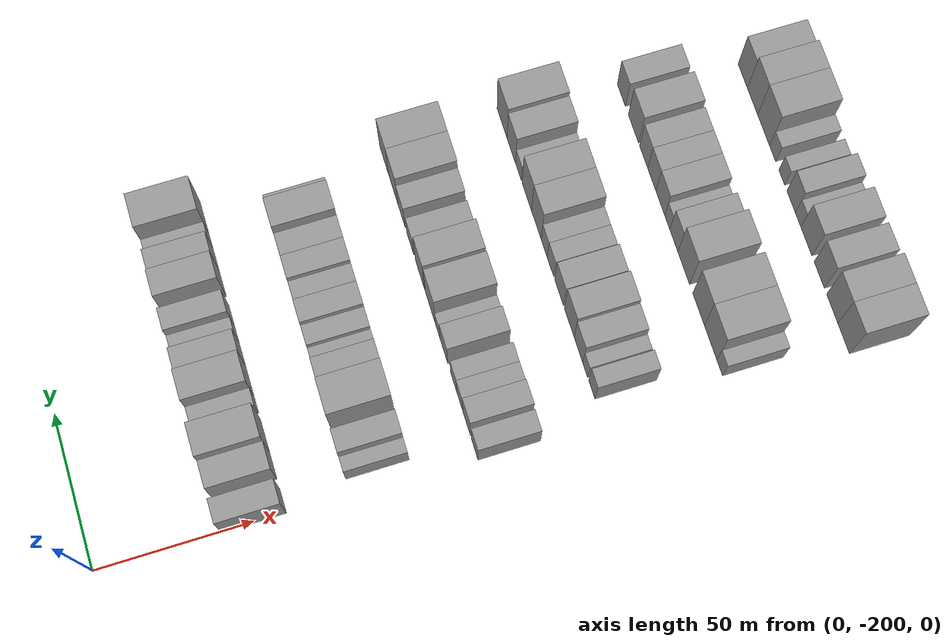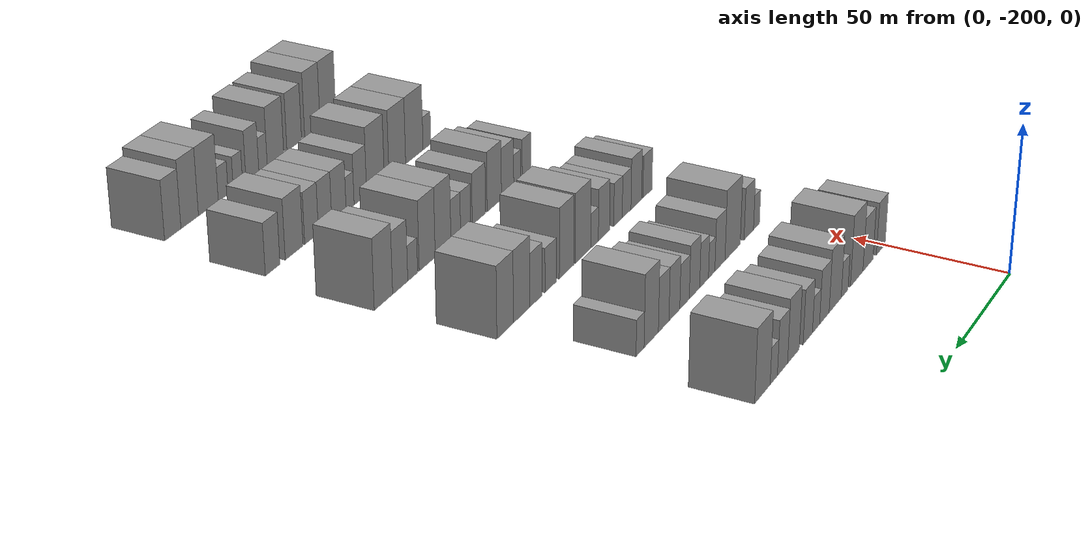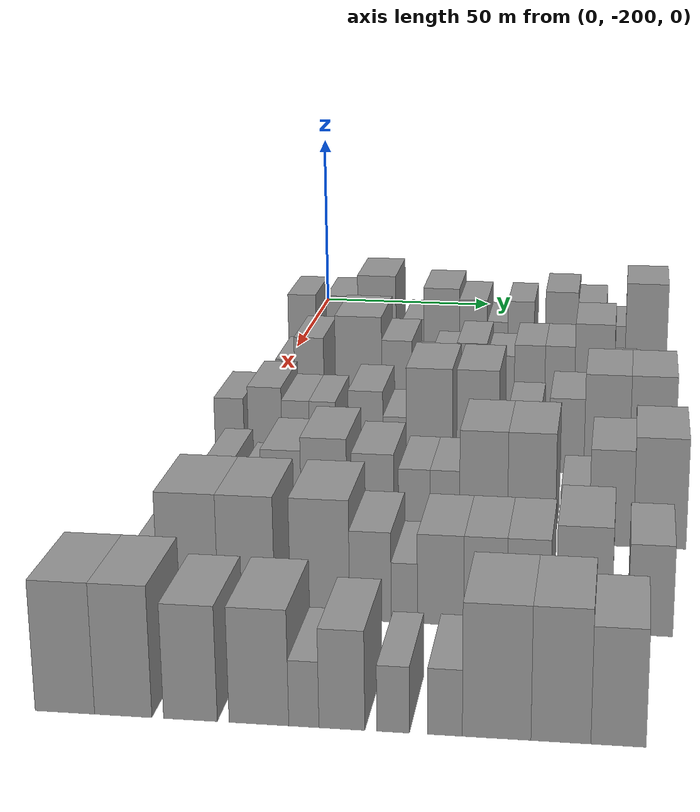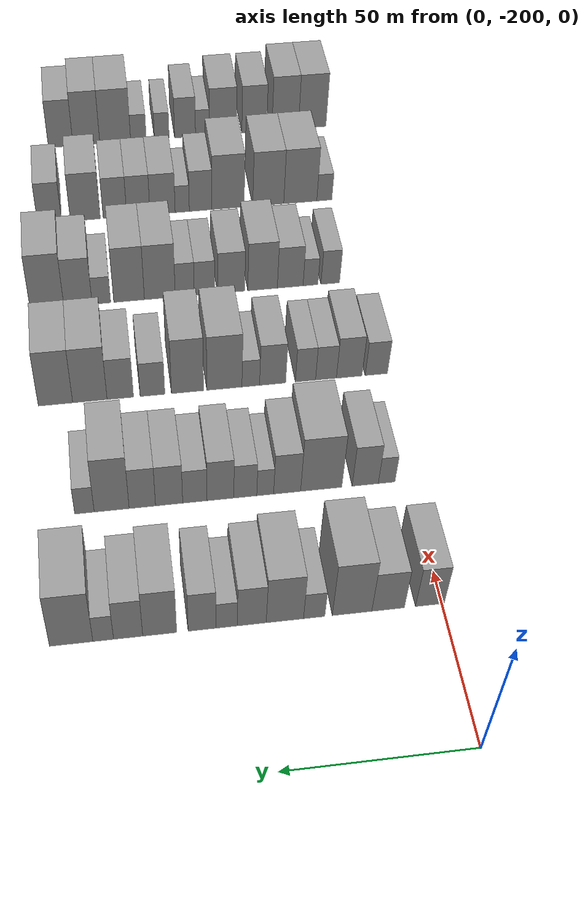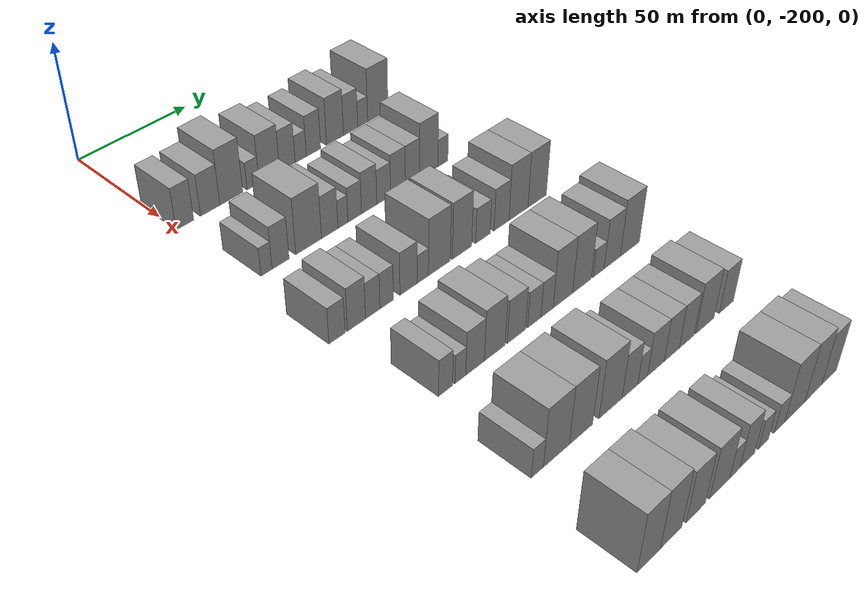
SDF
<sdf version="1.6">
 <world name="default">
  <model name="building_50">
   <static>1</static>
   <pose>50.0000 -196.6402 0 0.000000 0.000000 0.000000</pose>
   <link name="link">
    <pose>0 0 9.00 0 0 0</pose>
    <collision name="collision"><geometry><box><size>20.0000 7.7727 18.0000</size></box></geometry></collision>
    <visual name="visual">
     <cast_shadows>0</cast_shadows>
     <geometry><box><size>20.0000 7.7727 18.0000</size></box></geometry>
     <material>
      <script>
       <uri>model://grey_wall/materials/scripts</uri>
       <uri>model://grey_wall/materials/textures</uri>
       <name>vrc/grey_wall</name>
      </script>
     </material>
    </visual>
   </link>
  </model>
  <model name="building_51">
   <static>1</static>
   <pose>50.0000 -185.3771 0 0.000000 0.000000 0.000000</pose>
   <link name="link">
    <pose>0 0 9.00 0 0 0</pose>
    <collision name="collision"><geometry><box><size>20.0000 8.7536 18.0000</size></box></geometry></collision>
    <visual name="visual">
     <cast_shadows>0</cast_shadows>
     <geometry><box><size>20.0000 8.7536 18.0000</size></box></geometry>
     <material>
      <script>
       <uri>model://grey_wall/materials/scripts</uri>
       <uri>model://grey_wall/materials/textures</uri>
       <name>vrc/grey_wall</name>
      </script>
     </material>
    </visual>
   </link>
  </model>
  <model name="building_52">
   <static>1</static>
   <pose>50.0000 -175.7151 0 0.000000 0.000000 0.000000</pose>
   <link name="link">
    <pose>0 0 12.00 0 0 0</pose>
    <collision name="collision"><geometry><box><size>20.0000 10.5704 24.0000</size></box></geometry></collision>
    <visual name="visual">
     <cast_shadows>0</cast_shadows>
     <geometry><box><size>20.0000 10.5704 24.0000</size></box></geometry>
     <material>
      <script>
       <uri>model://grey_wall/materials/scripts</uri>
       <uri>model://grey_wall/materials/textures</uri>
       <name>vrc/grey_wall</name>
      </script>
     </material>
    </visual>
   </link>
  </model>
  <model name="building_53">
   <static>1</static>
   <pose>50.0000 -165.5970 0 0.000000 0.000000 0.000000</pose>
   <link name="link">
    <pose>0 0 6.00 0 0 0</pose>
    <collision name="collision"><geometry><box><size>20.0000 5.6657 12.0000</size></box></geometry></collision>
    <visual name="visual">
     <cast_shadows>0</cast_shadows>
     <geometry><box><size>20.0000 5.6657 12.0000</size></box></geometry>
     <material>
      <script>
       <uri>model://grey_wall/materials/scripts</uri>
       <uri>model://grey_wall/materials/textures</uri>
       <name>vrc/grey_wall</name>
      </script>
     </material>
    </visual>
   </link>
  </model>
  <model name="building_54">
   <static>1</static>
   <pose>50.0000 -157.8169 0 0.000000 0.000000 0.000000</pose>
   <link name="link">
    <pose>0 0 10.50 0 0 0</pose>
    <collision name="collision"><geometry><box><size>20.0000 9.8945 21.0000</size></box></geometry></collision>
    <visual name="visual">
     <cast_shadows>0</cast_shadows>
     <geometry><box><size>20.0000 9.8945 21.0000</size></box></geometry>
     <material>
      <script>
       <uri>model://grey_wall/materials/scripts</uri>
       <uri>model://grey_wall/materials/textures</uri>
       <name>vrc/grey_wall</name>
      </script>
     </material>
    </visual>
   </link>
  </model>
  <model name="building_55">
   <static>1</static>
   <pose>50.0000 -149.0319 0 0.000000 0.000000 0.000000</pose>
   <link name="link">
    <pose>0 0 9.00 0 0 0</pose>
    <collision name="collision"><geometry><box><size>20.0000 7.6756 18.0000</size></box></geometry></collision>
    <visual name="visual">
     <cast_shadows>0</cast_shadows>
     <geometry><box><size>20.0000 7.6756 18.0000</size></box></geometry>
     <material>
      <script>
       <uri>model://grey_wall/materials/scripts</uri>
       <uri>model://grey_wall/materials/textures</uri>
       <name>vrc/grey_wall</name>
      </script>
     </material>
    </visual>
   </link>
  </model>
  <model name="building_56">
   <static>1</static>
   <pose>50.0000 -142.3919 0 0.000000 0.000000 0.000000</pose>
   <link name="link">
    <pose>0 0 6.00 0 0 0</pose>
    <collision name="collision"><geometry><box><size>20.0000 5.6045 12.0000</size></box></geometry></collision>
    <visual name="visual">
     <cast_shadows>0</cast_shadows>
     <geometry><box><size>20.0000 5.6045 12.0000</size></box></geometry>
     <material>
      <script>
       <uri>model://grey_wall/materials/scripts</uri>
       <uri>model://grey_wall/materials/textures</uri>
       <name>vrc/grey_wall</name>
      </script>
     </material>
    </visual>
   </link>
  </model>
  <model name="building_57">
   <static>1</static>
   <pose>50.0000 -135.9577 0 0.000000 0.000000 0.000000</pose>
   <link name="link">
    <pose>0 0 9.00 0 0 0</pose>
    <collision name="collision"><geometry><box><size>20.0000 7.2639 18.0000</size></box></geometry></collision>
    <visual name="visual">
     <cast_shadows>0</cast_shadows>
     <geometry><box><size>20.0000 7.2639 18.0000</size></box></geometry>
     <material>
      <script>
       <uri>model://grey_wall/materials/scripts</uri>
       <uri>model://grey_wall/materials/textures</uri>
       <name>vrc/grey_wall</name>
      </script>
     </material>
    </visual>
   </link>
  </model>
  <model name="building_58">
   <static>1</static>
   <pose>50.0000 -124.8921 0 0.000000 0.000000 0.000000</pose>
   <link name="link">
    <pose>0 0 10.50 0 0 0</pose>
    <collision name="collision"><geometry><box><size>20.0000 8.8673 21.0000</size></box></geometry></collision>
    <visual name="visual">
     <cast_shadows>0</cast_shadows>
     <geometry><box><size>20.0000 8.8673 21.0000</size></box></geometry>
     <material>
      <script>
       <uri>model://grey_wall/materials/scripts</uri>
       <uri>model://grey_wall/materials/textures</uri>
       <name>vrc/grey_wall</name>
      </script>
     </material>
    </visual>
   </link>
  </model>
  <model name="building_59">
   <static>1</static>
   <pose>50.0000 -116.6675 0 0.000000 0.000000 0.000000</pose>
   <link name="link">
    <pose>0 0 9.00 0 0 0</pose>
    <collision name="collision"><geometry><box><size>20.0000 7.5818 18.0000</size></box></geometry></collision>
    <visual name="visual">
     <cast_shadows>0</cast_shadows>
     <geometry><box><size>20.0000 7.5818 18.0000</size></box></geometry>
     <material>
      <script>
       <uri>model://grey_wall/materials/scripts</uri>
       <uri>model://grey_wall/materials/textures</uri>
       <name>vrc/grey_wall</name>
      </script>
     </material>
    </visual>
   </link>
  </model>
  <model name="building_60">
   <static>1</static>
   <pose>50.0000 -110.1980 0 0.000000 0.000000 0.000000</pose>
   <link name="link">
    <pose>0 0 6.00 0 0 0</pose>
    <collision name="collision"><geometry><box><size>20.0000 5.3574 12.0000</size></box></geometry></collision>
    <visual name="visual">
     <cast_shadows>0</cast_shadows>
     <geometry><box><size>20.0000 5.3574 12.0000</size></box></geometry>
     <material>
      <script>
       <uri>model://grey_wall/materials/scripts</uri>
       <uri>model://grey_wall/materials/textures</uri>
       <name>vrc/grey_wall</name>
      </script>
     </material>
    </visual>
   </link>
  </model>
  <model name="building_61">
   <static>1</static>
   <pose>50.0000 -101.9220 0 0.000000 0.000000 0.000000</pose>
   <link name="link">
    <pose>0 0 12.00 0 0 0</pose>
    <collision name="collision"><geometry><box><size>20.0000 11.1946 24.0000</size></box></geometry></collision>
    <visual name="visual">
     <cast_shadows>0</cast_shadows>
     <geometry><box><size>20.0000 11.1946 24.0000</size></box></geometry>
     <material>
      <script>
       <uri>model://grey_wall/materials/scripts</uri>
       <uri>model://grey_wall/materials/textures</uri>
       <name>vrc/grey_wall</name>
      </script>
     </material>
    </visual>
   </link>
  </model>
  <model name="building_187">
   <static>1</static>
   <pose>90.0000 -193.4562 0 0.000000 0.000000 0.000000</pose>
   <link name="link">
    <pose>0 0 6.00 0 0 0</pose>
    <collision name="collision"><geometry><box><size>20.0000 4.8399 12.0000</size></box></geometry></collision>
    <visual name="visual">
     <cast_shadows>0</cast_shadows>
     <geometry><box><size>20.0000 4.8399 12.0000</size></box></geometry>
     <material>
      <script>
       <uri>model://grey_wall/materials/scripts</uri>
       <uri>model://grey_wall/materials/textures</uri>
       <name>vrc/grey_wall</name>
      </script>
     </material>
    </visual>
   </link>
  </model>
  <model name="building_188">
   <static>1</static>
   <pose>90.0000 -187.2485 0 0.000000 0.000000 0.000000</pose>
   <link name="link">
    <pose>0 0 9.00 0 0 0</pose>
    <collision name="collision"><geometry><box><size>20.0000 7.5754 18.0000</size></box></geometry></collision>
    <visual name="visual">
     <cast_shadows>0</cast_shadows>
     <geometry><box><size>20.0000 7.5754 18.0000</size></box></geometry>
     <material>
      <script>
       <uri>model://grey_wall/materials/scripts</uri>
       <uri>model://grey_wall/materials/textures</uri>
       <name>vrc/grey_wall</name>
      </script>
     </material>
    </visual>
   </link>
  </model>
  <model name="building_189">
   <static>1</static>
   <pose>90.0000 -174.5279 0 0.000000 0.000000 0.000000</pose>
   <link name="link">
    <pose>0 0 12.00 0 0 0</pose>
    <collision name="collision"><geometry><box><size>20.0000 11.8659 24.0000</size></box></geometry></collision>
    <visual name="visual">
     <cast_shadows>0</cast_shadows>
     <geometry><box><size>20.0000 11.8659 24.0000</size></box></geometry>
     <material>
      <script>
       <uri>model://grey_wall/materials/scripts</uri>
       <uri>model://grey_wall/materials/textures</uri>
       <name>vrc/grey_wall</name>
      </script>
     </material>
    </visual>
   </link>
  </model>
  <model name="building_190">
   <static>1</static>
   <pose>90.0000 -164.7152 0 0.000000 0.000000 0.000000</pose>
   <link name="link">
    <pose>0 0 9.00 0 0 0</pose>
    <collision name="collision"><geometry><box><size>20.0000 7.7595 18.0000</size></box></geometry></collision>
    <visual name="visual">
     <cast_shadows>0</cast_shadows>
     <geometry><box><size>20.0000 7.7595 18.0000</size></box></geometry>
     <material>
      <script>
       <uri>model://grey_wall/materials/scripts</uri>
       <uri>model://grey_wall/materials/textures</uri>
       <name>vrc/grey_wall</name>
      </script>
     </material>
    </visual>
   </link>
  </model>
  <model name="building_191">
   <static>1</static>
   <pose>90.0000 -158.4291 0 0.000000 0.000000 0.000000</pose>
   <link name="link">
    <pose>0 0 6.00 0 0 0</pose>
    <collision name="collision"><geometry><box><size>20.0000 4.8127 12.0000</size></box></geometry></collision>
    <visual name="visual">
     <cast_shadows>0</cast_shadows>
     <geometry><box><size>20.0000 4.8127 12.0000</size></box></geometry>
     <material>
      <script>
       <uri>model://grey_wall/materials/scripts</uri>
       <uri>model://grey_wall/materials/textures</uri>
       <name>vrc/grey_wall</name>
      </script>
     </material>
    </visual>
   </link>
  </model>
  <model name="building_192">
   <static>1</static>
   <pose>90.0000 -152.7436 0 0.000000 0.000000 0.000000</pose>
   <link name="link">
    <pose>0 0 7.50 0 0 0</pose>
    <collision name="collision"><geometry><box><size>20.0000 6.5583 15.0000</size></box></geometry></collision>
    <visual name="visual">
     <cast_shadows>0</cast_shadows>
     <geometry><box><size>20.0000 6.5583 15.0000</size></box></geometry>
     <material>
      <script>
       <uri>model://grey_wall/materials/scripts</uri>
       <uri>model://grey_wall/materials/textures</uri>
       <name>vrc/grey_wall</name>
      </script>
     </material>
    </visual>
   </link>
  </model>
  <model name="building_193">
   <static>1</static>
   <pose>90.0000 -145.6648 0 0.000000 0.000000 0.000000</pose>
   <link name="link">
    <pose>0 0 9.00 0 0 0</pose>
    <collision name="collision"><geometry><box><size>20.0000 7.5993 18.0000</size></box></geometry></collision>
    <visual name="visual">
     <cast_shadows>0</cast_shadows>
     <geometry><box><size>20.0000 7.5993 18.0000</size></box></geometry>
     <material>
      <script>
       <uri>model://grey_wall/materials/scripts</uri>
       <uri>model://grey_wall/materials/textures</uri>
       <name>vrc/grey_wall</name>
      </script>
     </material>
    </visual>
   </link>
  </model>
  <model name="building_194">
   <static>1</static>
   <pose>90.0000 -138.4148 0 0.000000 0.000000 0.000000</pose>
   <link name="link">
    <pose>0 0 7.50 0 0 0</pose>
    <collision name="collision"><geometry><box><size>20.0000 6.9006 15.0000</size></box></geometry></collision>
    <visual name="visual">
     <cast_shadows>0</cast_shadows>
     <geometry><box><size>20.0000 6.9006 15.0000</size></box></geometry>
     <material>
      <script>
       <uri>model://grey_wall/materials/scripts</uri>
       <uri>model://grey_wall/materials/textures</uri>
       <name>vrc/grey_wall</name>
      </script>
     </material>
    </visual>
   </link>
  </model>
  <model name="building_195">
   <static>1</static>
   <pose>90.0000 -131.1266 0 0.000000 0.000000 0.000000</pose>
   <link name="link">
    <pose>0 0 9.00 0 0 0</pose>
    <collision name="collision"><geometry><box><size>20.0000 7.6757 18.0000</size></box></geometry></collision>
    <visual name="visual">
     <cast_shadows>0</cast_shadows>
     <geometry><box><size>20.0000 7.6757 18.0000</size></box></geometry>
     <material>
      <script>
       <uri>model://grey_wall/materials/scripts</uri>
       <uri>model://grey_wall/materials/textures</uri>
       <name>vrc/grey_wall</name>
      </script>
     </material>
    </visual>
   </link>
  </model>
  <model name="building_196">
   <static>1</static>
   <pose>90.0000 -123.5743 0 0.000000 0.000000 0.000000</pose>
   <link name="link">
    <pose>0 0 9.00 0 0 0</pose>
    <collision name="collision"><geometry><box><size>20.0000 7.4290 18.0000</size></box></geometry></collision>
    <visual name="visual">
     <cast_shadows>0</cast_shadows>
     <geometry><box><size>20.0000 7.4290 18.0000</size></box></geometry>
     <material>
      <script>
       <uri>model://grey_wall/materials/scripts</uri>
       <uri>model://grey_wall/materials/textures</uri>
       <name>vrc/grey_wall</name>
      </script>
     </material>
    </visual>
   </link>
  </model>
  <model name="building_197">
   <static>1</static>
   <pose>90.0000 -114.9617 0 0.000000 0.000000 0.000000</pose>
   <link name="link">
    <pose>0 0 12.00 0 0 0</pose>
    <collision name="collision"><geometry><box><size>20.0000 9.7962 24.0000</size></box></geometry></collision>
    <visual name="visual">
     <cast_shadows>0</cast_shadows>
     <geometry><box><size>20.0000 9.7962 24.0000</size></box></geometry>
     <material>
      <script>
       <uri>model://grey_wall/materials/scripts</uri>
       <uri>model://grey_wall/materials/textures</uri>
       <name>vrc/grey_wall</name>
      </script>
     </material>
    </visual>
   </link>
  </model>
  <model name="building_198">
   <static>1</static>
   <pose>90.0000 -107.3405 0 0.000000 0.000000 0.000000</pose>
   <link name="link">
    <pose>0 0 6.00 0 0 0</pose>
    <collision name="collision"><geometry><box><size>20.0000 5.4462 12.0000</size></box></geometry></collision>
    <visual name="visual">
     <cast_shadows>0</cast_shadows>
     <geometry><box><size>20.0000 5.4462 12.0000</size></box></geometry>
     <material>
      <script>
       <uri>model://grey_wall/materials/scripts</uri>
       <uri>model://grey_wall/materials/textures</uri>
       <name>vrc/grey_wall</name>
      </script>
     </material>
    </visual>
   </link>
  </model>
  <model name="building_326">
   <static>1</static>
   <pose>130.0000 -198.7115 0 0.000000 0.000000 0.000000</pose>
   <link name="link">
    <pose>0 0 7.50 0 0 0</pose>
    <collision name="collision"><geometry><box><size>20.0000 6.9392 15.0000</size></box></geometry></collision>
    <visual name="visual">
     <cast_shadows>0</cast_shadows>
     <geometry><box><size>20.0000 6.9392 15.0000</size></box></geometry>
     <material>
      <script>
       <uri>model://grey_wall/materials/scripts</uri>
       <uri>model://grey_wall/materials/textures</uri>
       <name>vrc/grey_wall</name>
      </script>
     </material>
    </visual>
   </link>
  </model>
  <model name="building_327">
   <static>1</static>
   <pose>130.0000 -190.2545 0 0.000000 0.000000 0.000000</pose>
   <link name="link">
    <pose>0 0 9.00 0 0 0</pose>
    <collision name="collision"><geometry><box><size>20.0000 7.9747 18.0000</size></box></geometry></collision>
    <visual name="visual">
     <cast_shadows>0</cast_shadows>
     <geometry><box><size>20.0000 7.9747 18.0000</size></box></geometry>
     <material>
      <script>
       <uri>model://grey_wall/materials/scripts</uri>
       <uri>model://grey_wall/materials/textures</uri>
       <name>vrc/grey_wall</name>
      </script>
     </material>
    </visual>
   </link>
  </model>
  <model name="building_328">
   <static>1</static>
   <pose>130.0000 -183.0365 0 0.000000 0.000000 0.000000</pose>
   <link name="link">
    <pose>0 0 7.50 0 0 0</pose>
    <collision name="collision"><geometry><box><size>20.0000 6.4613 15.0000</size></box></geometry></collision>
    <visual name="visual">
     <cast_shadows>0</cast_shadows>
     <geometry><box><size>20.0000 6.4613 15.0000</size></box></geometry>
     <material>
      <script>
       <uri>model://grey_wall/materials/scripts</uri>
       <uri>model://grey_wall/materials/textures</uri>
       <name>vrc/grey_wall</name>
      </script>
     </material>
    </visual>
   </link>
  </model>
  <model name="building_329">
   <static>1</static>
   <pose>130.0000 -176.6964 0 0.000000 0.000000 0.000000</pose>
   <link name="link">
    <pose>0 0 7.50 0 0 0</pose>
    <collision name="collision"><geometry><box><size>20.0000 6.2189 15.0000</size></box></geometry></collision>
    <visual name="visual">
     <cast_shadows>0</cast_shadows>
     <geometry><box><size>20.0000 6.2189 15.0000</size></box></geometry>
     <material>
      <script>
       <uri>model://grey_wall/materials/scripts</uri>
       <uri>model://grey_wall/materials/textures</uri>
       <name>vrc/grey_wall</name>
      </script>
     </material>
    </visual>
   </link>
  </model>
  <model name="building_330">
   <static>1</static>
   <pose>130.0000 -166.5585 0 0.000000 0.000000 0.000000</pose>
   <link name="link">
    <pose>0 0 9.00 0 0 0</pose>
    <collision name="collision"><geometry><box><size>20.0000 8.0570 18.0000</size></box></geometry></collision>
    <visual name="visual">
     <cast_shadows>0</cast_shadows>
     <geometry><box><size>20.0000 8.0570 18.0000</size></box></geometry>
     <material>
      <script>
       <uri>model://grey_wall/materials/scripts</uri>
       <uri>model://grey_wall/materials/textures</uri>
       <name>vrc/grey_wall</name>
      </script>
     </material>
    </visual>
   </link>
  </model>
  <model name="building_331">
   <static>1</static>
   <pose>130.0000 -159.8235 0 0.000000 0.000000 0.000000</pose>
   <link name="link">
    <pose>0 0 6.00 0 0 0</pose>
    <collision name="collision"><geometry><box><size>20.0000 5.4130 12.0000</size></box></geometry></collision>
    <visual name="visual">
     <cast_shadows>0</cast_shadows>
     <geometry><box><size>20.0000 5.4130 12.0000</size></box></geometry>
     <material>
      <script>
       <uri>model://grey_wall/materials/scripts</uri>
       <uri>model://grey_wall/materials/textures</uri>
       <name>vrc/grey_wall</name>
      </script>
     </material>
    </visual>
   </link>
  </model>
  <model name="building_332">
   <static>1</static>
   <pose>130.0000 -151.7555 0 0.000000 0.000000 0.000000</pose>
   <link name="link">
    <pose>0 0 12.00 0 0 0</pose>
    <collision name="collision"><geometry><box><size>20.0000 10.7230 24.0000</size></box></geometry></collision>
    <visual name="visual">
     <cast_shadows>0</cast_shadows>
     <geometry><box><size>20.0000 10.7230 24.0000</size></box></geometry>
     <material>
      <script>
       <uri>model://grey_wall/materials/scripts</uri>
       <uri>model://grey_wall/materials/textures</uri>
       <name>vrc/grey_wall</name>
      </script>
     </material>
    </visual>
   </link>
  </model>
  <model name="building_333">
   <static>1</static>
   <pose>130.0000 -140.5081 0 0.000000 0.000000 0.000000</pose>
   <link name="link">
    <pose>0 0 12.00 0 0 0</pose>
    <collision name="collision"><geometry><box><size>20.0000 9.7718 24.0000</size></box></geometry></collision>
    <visual name="visual">
     <cast_shadows>0</cast_shadows>
     <geometry><box><size>20.0000 9.7718 24.0000</size></box></geometry>
     <material>
      <script>
       <uri>model://grey_wall/materials/scripts</uri>
       <uri>model://grey_wall/materials/textures</uri>
       <name>vrc/grey_wall</name>
      </script>
     </material>
    </visual>
   </link>
  </model>
  <model name="building_334">
   <static>1</static>
   <pose>130.0000 -129.8752 0 0.000000 0.000000 0.000000</pose>
   <link name="link">
    <pose>0 0 7.50 0 0 0</pose>
    <collision name="collision"><geometry><box><size>20.0000 7.4941 15.0000</size></box></geometry></collision>
    <visual name="visual">
     <cast_shadows>0</cast_shadows>
     <geometry><box><size>20.0000 7.4941 15.0000</size></box></geometry>
     <material>
      <script>
       <uri>model://grey_wall/materials/scripts</uri>
       <uri>model://grey_wall/materials/textures</uri>
       <name>vrc/grey_wall</name>
      </script>
     </material>
    </visual>
   </link>
  </model>
  <model name="building_335">
   <static>1</static>
   <pose>130.0000 -120.1341 0 0.000000 0.000000 0.000000</pose>
   <link name="link">
    <pose>0 0 9.00 0 0 0</pose>
    <collision name="collision"><geometry><box><size>20.0000 7.9881 18.0000</size></box></geometry></collision>
    <visual name="visual">
     <cast_shadows>0</cast_shadows>
     <geometry><box><size>20.0000 7.9881 18.0000</size></box></geometry>
     <material>
      <script>
       <uri>model://grey_wall/materials/scripts</uri>
       <uri>model://grey_wall/materials/textures</uri>
       <name>vrc/grey_wall</name>
      </script>
     </material>
    </visual>
   </link>
  </model>
  <model name="building_336">
   <static>1</static>
   <pose>130.0000 -110.9661 0 0.000000 0.000000 0.000000</pose>
   <link name="link">
    <pose>0 0 12.00 0 0 0</pose>
    <collision name="collision"><geometry><box><size>20.0000 10.3480 24.0000</size></box></geometry></collision>
    <visual name="visual">
     <cast_shadows>0</cast_shadows>
     <geometry><box><size>20.0000 10.3480 24.0000</size></box></geometry>
     <material>
      <script>
       <uri>model://grey_wall/materials/scripts</uri>
       <uri>model://grey_wall/materials/textures</uri>
       <name>vrc/grey_wall</name>
      </script>
     </material>
    </visual>
   </link>
  </model>
  <model name="building_337">
   <static>1</static>
   <pose>130.0000 -100.6401 0 0.000000 0.000000 0.000000</pose>
   <link name="link">
    <pose>0 0 12.00 0 0 0</pose>
    <collision name="collision"><geometry><box><size>20.0000 10.3039 24.0000</size></box></geometry></collision>
    <visual name="visual">
     <cast_shadows>0</cast_shadows>
     <geometry><box><size>20.0000 10.3039 24.0000</size></box></geometry>
     <material>
      <script>
       <uri>model://grey_wall/materials/scripts</uri>
       <uri>model://grey_wall/materials/textures</uri>
       <name>vrc/grey_wall</name>
      </script>
     </material>
    </visual>
   </link>
  </model>
  <model name="building_469">
   <static>1</static>
   <pose>170.0000 -191.6110 0 0.000000 0.000000 0.000000</pose>
   <link name="link">
    <pose>0 0 7.50 0 0 0</pose>
    <collision name="collision"><geometry><box><size>20.0000 6.1556 15.0000</size></box></geometry></collision>
    <visual name="visual">
     <cast_shadows>0</cast_shadows>
     <geometry><box><size>20.0000 6.1556 15.0000</size></box></geometry>
     <material>
      <script>
       <uri>model://grey_wall/materials/scripts</uri>
       <uri>model://grey_wall/materials/textures</uri>
       <name>vrc/grey_wall</name>
      </script>
     </material>
    </visual>
   </link>
  </model>
  <model name="building_470">
   <static>1</static>
   <pose>170.0000 -185.0662 0 0.000000 0.000000 0.000000</pose>
   <link name="link">
    <pose>0 0 6.00 0 0 0</pose>
    <collision name="collision"><geometry><box><size>20.0000 4.9342 12.0000</size></box></geometry></collision>
    <visual name="visual">
     <cast_shadows>0</cast_shadows>
     <geometry><box><size>20.0000 4.9342 12.0000</size></box></geometry>
     <material>
      <script>
       <uri>model://grey_wall/materials/scripts</uri>
       <uri>model://grey_wall/materials/textures</uri>
       <name>vrc/grey_wall</name>
      </script>
     </material>
    </visual>
   </link>
  </model>
  <model name="building_471">
   <static>1</static>
   <pose>170.0000 -178.3505 0 0.000000 0.000000 0.000000</pose>
   <link name="link">
    <pose>0 0 9.00 0 0 0</pose>
    <collision name="collision"><geometry><box><size>20.0000 8.4971 18.0000</size></box></geometry></collision>
    <visual name="visual">
     <cast_shadows>0</cast_shadows>
     <geometry><box><size>20.0000 8.4971 18.0000</size></box></geometry>
     <material>
      <script>
       <uri>model://grey_wall/materials/scripts</uri>
       <uri>model://grey_wall/materials/textures</uri>
       <name>vrc/grey_wall</name>
      </script>
     </material>
    </visual>
   </link>
  </model>
  <model name="building_472">
   <static>1</static>
   <pose>170.0000 -169.2389 0 0.000000 0.000000 0.000000</pose>
   <link name="link">
    <pose>0 0 10.50 0 0 0</pose>
    <collision name="collision"><geometry><box><size>20.0000 9.7262 21.0000</size></box></geometry></collision>
    <visual name="visual">
     <cast_shadows>0</cast_shadows>
     <geometry><box><size>20.0000 9.7262 21.0000</size></box></geometry>
     <material>
      <script>
       <uri>model://grey_wall/materials/scripts</uri>
       <uri>model://grey_wall/materials/textures</uri>
       <name>vrc/grey_wall</name>
      </script>
     </material>
    </visual>
   </link>
  </model>
  <model name="building_473">
   <static>1</static>
   <pose>170.0000 -158.9366 0 0.000000 0.000000 0.000000</pose>
   <link name="link">
    <pose>0 0 9.00 0 0 0</pose>
    <collision name="collision"><geometry><box><size>20.0000 8.8783 18.0000</size></box></geometry></collision>
    <visual name="visual">
     <cast_shadows>0</cast_shadows>
     <geometry><box><size>20.0000 8.8783 18.0000</size></box></geometry>
     <material>
      <script>
       <uri>model://grey_wall/materials/scripts</uri>
       <uri>model://grey_wall/materials/textures</uri>
       <name>vrc/grey_wall</name>
      </script>
     </material>
    </visual>
   </link>
  </model>
  <model name="building_474">
   <static>1</static>
   <pose>170.0000 -150.1886 0 0.000000 0.000000 0.000000</pose>
   <link name="link">
    <pose>0 0 7.50 0 0 0</pose>
    <collision name="collision"><geometry><box><size>20.0000 6.6178 15.0000</size></box></geometry></collision>
    <visual name="visual">
     <cast_shadows>0</cast_shadows>
     <geometry><box><size>20.0000 6.6178 15.0000</size></box></geometry>
     <material>
      <script>
       <uri>model://grey_wall/materials/scripts</uri>
       <uri>model://grey_wall/materials/textures</uri>
       <name>vrc/grey_wall</name>
      </script>
     </material>
    </visual>
   </link>
  </model>
  <model name="building_475">
   <static>1</static>
   <pose>170.0000 -143.7810 0 0.000000 0.000000 0.000000</pose>
   <link name="link">
    <pose>0 0 7.50 0 0 0</pose>
    <collision name="collision"><geometry><box><size>20.0000 6.1973 15.0000</size></box></geometry></collision>
    <visual name="visual">
     <cast_shadows>0</cast_shadows>
     <geometry><box><size>20.0000 6.1973 15.0000</size></box></geometry>
     <material>
      <script>
       <uri>model://grey_wall/materials/scripts</uri>
       <uri>model://grey_wall/materials/textures</uri>
       <name>vrc/grey_wall</name>
      </script>
     </material>
    </visual>
   </link>
  </model>
  <model name="building_476">
   <static>1</static>
   <pose>170.0000 -135.6864 0 0.000000 0.000000 0.000000</pose>
   <link name="link">
    <pose>0 0 12.00 0 0 0</pose>
    <collision name="collision"><geometry><box><size>20.0000 9.9919 24.0000</size></box></geometry></collision>
    <visual name="visual">
     <cast_shadows>0</cast_shadows>
     <geometry><box><size>20.0000 9.9919 24.0000</size></box></geometry>
     <material>
      <script>
       <uri>model://grey_wall/materials/scripts</uri>
       <uri>model://grey_wall/materials/textures</uri>
       <name>vrc/grey_wall</name>
      </script>
     </material>
    </visual>
   </link>
  </model>
  <model name="building_477">
   <static>1</static>
   <pose>170.0000 -125.7331 0 0.000000 0.000000 0.000000</pose>
   <link name="link">
    <pose>0 0 12.00 0 0 0</pose>
    <collision name="collision"><geometry><box><size>20.0000 9.9149 24.0000</size></box></geometry></collision>
    <visual name="visual">
     <cast_shadows>0</cast_shadows>
     <geometry><box><size>20.0000 9.9149 24.0000</size></box></geometry>
     <material>
      <script>
       <uri>model://grey_wall/materials/scripts</uri>
       <uri>model://grey_wall/materials/textures</uri>
       <name>vrc/grey_wall</name>
      </script>
     </material>
    </visual>
   </link>
  </model>
  <model name="building_478">
   <static>1</static>
   <pose>170.0000 -116.7799 0 0.000000 0.000000 0.000000</pose>
   <link name="link">
    <pose>0 0 6.00 0 0 0</pose>
    <collision name="collision"><geometry><box><size>20.0000 5.9915 12.0000</size></box></geometry></collision>
    <visual name="visual">
     <cast_shadows>0</cast_shadows>
     <geometry><box><size>20.0000 5.9915 12.0000</size></box></geometry>
     <material>
      <script>
       <uri>model://grey_wall/materials/scripts</uri>
       <uri>model://grey_wall/materials/textures</uri>
       <name>vrc/grey_wall</name>
      </script>
     </material>
    </visual>
   </link>
  </model>
  <model name="building_479">
   <static>1</static>
   <pose>170.0000 -109.2508 0 0.000000 0.000000 0.000000</pose>
   <link name="link">
    <pose>0 0 10.50 0 0 0</pose>
    <collision name="collision"><geometry><box><size>20.0000 9.0666 21.0000</size></box></geometry></collision>
    <visual name="visual">
     <cast_shadows>0</cast_shadows>
     <geometry><box><size>20.0000 9.0666 21.0000</size></box></geometry>
     <material>
      <script>
       <uri>model://grey_wall/materials/scripts</uri>
       <uri>model://grey_wall/materials/textures</uri>
       <name>vrc/grey_wall</name>
      </script>
     </material>
    </visual>
   </link>
  </model>
  <model name="building_480">
   <static>1</static>
   <pose>170.0000 -99.3218 0 0.000000 0.000000 0.000000</pose>
   <link name="link">
    <pose>0 0 12.00 0 0 0</pose>
    <collision name="collision"><geometry><box><size>20.0000 10.7915 24.0000</size></box></geometry></collision>
    <visual name="visual">
     <cast_shadows>0</cast_shadows>
     <geometry><box><size>20.0000 10.7915 24.0000</size></box></geometry>
     <material>
      <script>
       <uri>model://grey_wall/materials/scripts</uri>
       <uri>model://grey_wall/materials/textures</uri>
       <name>vrc/grey_wall</name>
      </script>
     </material>
    </visual>
   </link>
  </model>
  <model name="building_606">
   <static>1</static>
   <pose>210.0000 -196.7554 0 0.000000 0.000000 0.000000</pose>
   <link name="link">
    <pose>0 0 6.00 0 0 0</pose>
    <collision name="collision"><geometry><box><size>20.0000 5.3253 12.0000</size></box></geometry></collision>
    <visual name="visual">
     <cast_shadows>0</cast_shadows>
     <geometry><box><size>20.0000 5.3253 12.0000</size></box></geometry>
     <material>
      <script>
       <uri>model://grey_wall/materials/scripts</uri>
       <uri>model://grey_wall/materials/textures</uri>
       <name>vrc/grey_wall</name>
      </script>
     </material>
    </visual>
   </link>
  </model>
  <model name="building_607">
   <static>1</static>
   <pose>210.0000 -188.2774 0 0.000000 0.000000 0.000000</pose>
   <link name="link">
    <pose>0 0 12.00 0 0 0</pose>
    <collision name="collision"><geometry><box><size>20.0000 11.6308 24.0000</size></box></geometry></collision>
    <visual name="visual">
     <cast_shadows>0</cast_shadows>
     <geometry><box><size>20.0000 11.6308 24.0000</size></box></geometry>
     <material>
      <script>
       <uri>model://grey_wall/materials/scripts</uri>
       <uri>model://grey_wall/materials/textures</uri>
       <name>vrc/grey_wall</name>
      </script>
     </material>
    </visual>
   </link>
  </model>
  <model name="building_608">
   <static>1</static>
   <pose>210.0000 -177.0182 0 0.000000 0.000000 0.000000</pose>
   <link name="link">
    <pose>0 0 12.00 0 0 0</pose>
    <collision name="collision"><geometry><box><size>20.0000 10.8878 24.0000</size></box></geometry></collision>
    <visual name="visual">
     <cast_shadows>0</cast_shadows>
     <geometry><box><size>20.0000 10.8878 24.0000</size></box></geometry>
     <material>
      <script>
       <uri>model://grey_wall/materials/scripts</uri>
       <uri>model://grey_wall/materials/textures</uri>
       <name>vrc/grey_wall</name>
      </script>
     </material>
    </visual>
   </link>
  </model>
  <model name="building_609">
   <static>1</static>
   <pose>210.0000 -162.9472 0 0.000000 0.000000 0.000000</pose>
   <link name="link">
    <pose>0 0 12.00 0 0 0</pose>
    <collision name="collision"><geometry><box><size>20.0000 11.2542 24.0000</size></box></geometry></collision>
    <visual name="visual">
     <cast_shadows>0</cast_shadows>
     <geometry><box><size>20.0000 11.2542 24.0000</size></box></geometry>
     <material>
      <script>
       <uri>model://grey_wall/materials/scripts</uri>
       <uri>model://grey_wall/materials/textures</uri>
       <name>vrc/grey_wall</name>
      </script>
     </material>
    </visual>
   </link>
  </model>
  <model name="building_610">
   <static>1</static>
   <pose>210.0000 -153.4004 0 0.000000 0.000000 0.000000</pose>
   <link name="link">
    <pose>0 0 9.00 0 0 0</pose>
    <collision name="collision"><geometry><box><size>20.0000 7.8394 18.0000</size></box></geometry></collision>
    <visual name="visual">
     <cast_shadows>0</cast_shadows>
     <geometry><box><size>20.0000 7.8394 18.0000</size></box></geometry>
     <material>
      <script>
       <uri>model://grey_wall/materials/scripts</uri>
       <uri>model://grey_wall/materials/textures</uri>
       <name>vrc/grey_wall</name>
      </script>
     </material>
    </visual>
   </link>
  </model>
  <model name="building_611">
   <static>1</static>
   <pose>210.0000 -147.0201 0 0.000000 0.000000 0.000000</pose>
   <link name="link">
    <pose>0 0 6.00 0 0 0</pose>
    <collision name="collision"><geometry><box><size>20.0000 4.9212 12.0000</size></box></geometry></collision>
    <visual name="visual">
     <cast_shadows>0</cast_shadows>
     <geometry><box><size>20.0000 4.9212 12.0000</size></box></geometry>
     <material>
      <script>
       <uri>model://grey_wall/materials/scripts</uri>
       <uri>model://grey_wall/materials/textures</uri>
       <name>vrc/grey_wall</name>
      </script>
     </material>
    </visual>
   </link>
  </model>
  <model name="building_612">
   <static>1</static>
   <pose>210.0000 -140.2068 0 0.000000 0.000000 0.000000</pose>
   <link name="link">
    <pose>0 0 9.00 0 0 0</pose>
    <collision name="collision"><geometry><box><size>20.0000 8.7052 18.0000</size></box></geometry></collision>
    <visual name="visual">
     <cast_shadows>0</cast_shadows>
     <geometry><box><size>20.0000 8.7052 18.0000</size></box></geometry>
     <material>
      <script>
       <uri>model://grey_wall/materials/scripts</uri>
       <uri>model://grey_wall/materials/textures</uri>
       <name>vrc/grey_wall</name>
      </script>
     </material>
    </visual>
   </link>
  </model>
  <model name="building_613">
   <static>1</static>
   <pose>210.0000 -131.8505 0 0.000000 0.000000 0.000000</pose>
   <link name="link">
    <pose>0 0 9.00 0 0 0</pose>
    <collision name="collision"><geometry><box><size>20.0000 8.0074 18.0000</size></box></geometry></collision>
    <visual name="visual">
     <cast_shadows>0</cast_shadows>
     <geometry><box><size>20.0000 8.0074 18.0000</size></box></geometry>
     <material>
      <script>
       <uri>model://grey_wall/materials/scripts</uri>
       <uri>model://grey_wall/materials/textures</uri>
       <name>vrc/grey_wall</name>
      </script>
     </material>
    </visual>
   </link>
  </model>
  <model name="building_614">
   <static>1</static>
   <pose>210.0000 -123.8064 0 0.000000 0.000000 0.000000</pose>
   <link name="link">
    <pose>0 0 9.00 0 0 0</pose>
    <collision name="collision"><geometry><box><size>20.0000 8.0809 18.0000</size></box></geometry></collision>
    <visual name="visual">
     <cast_shadows>0</cast_shadows>
     <geometry><box><size>20.0000 8.0809 18.0000</size></box></geometry>
     <material>
      <script>
       <uri>model://grey_wall/materials/scripts</uri>
       <uri>model://grey_wall/materials/textures</uri>
       <name>vrc/grey_wall</name>
      </script>
     </material>
    </visual>
   </link>
  </model>
  <model name="building_615">
   <static>1</static>
   <pose>210.0000 -113.6383 0 0.000000 0.000000 0.000000</pose>
   <link name="link">
    <pose>0 0 10.50 0 0 0</pose>
    <collision name="collision"><geometry><box><size>20.0000 10.2553 21.0000</size></box></geometry></collision>
    <visual name="visual">
     <cast_shadows>0</cast_shadows>
     <geometry><box><size>20.0000 10.2553 21.0000</size></box></geometry>
     <material>
      <script>
       <uri>model://grey_wall/materials/scripts</uri>
       <uri>model://grey_wall/materials/textures</uri>
       <name>vrc/grey_wall</name>
      </script>
     </material>
    </visual>
   </link>
  </model>
  <model name="building_616">
   <static>1</static>
   <pose>210.0000 -101.4064 0 0.000000 0.000000 0.000000</pose>
   <link name="link">
    <pose>0 0 9.00 0 0 0</pose>
    <collision name="collision"><geometry><box><size>20.0000 8.2085 18.0000</size></box></geometry></collision>
    <visual name="visual">
     <cast_shadows>0</cast_shadows>
     <geometry><box><size>20.0000 8.2085 18.0000</size></box></geometry>
     <material>
      <script>
       <uri>model://grey_wall/materials/scripts</uri>
       <uri>model://grey_wall/materials/textures</uri>
       <name>vrc/grey_wall</name>
      </script>
     </material>
    </visual>
   </link>
  </model>
  <model name="building_751">
   <static>1</static>
   <pose>250.0000 -199.3009 0 0.000000 0.000000 0.000000</pose>
   <link name="link">
    <pose>0 0 12.00 0 0 0</pose>
    <collision name="collision"><geometry><box><size>20.0000 10.3000 24.0000</size></box></geometry></collision>
    <visual name="visual">
     <cast_shadows>0</cast_shadows>
     <geometry><box><size>20.0000 10.3000 24.0000</size></box></geometry>
     <material>
      <script>
       <uri>model://grey_wall/materials/scripts</uri>
       <uri>model://grey_wall/materials/textures</uri>
       <name>vrc/grey_wall</name>
      </script>
     </material>
    </visual>
   </link>
  </model>
  <model name="building_752">
   <static>1</static>
   <pose>250.0000 -189.2181 0 0.000000 0.000000 0.000000</pose>
   <link name="link">
    <pose>0 0 12.00 0 0 0</pose>
    <collision name="collision"><geometry><box><size>20.0000 9.8656 24.0000</size></box></geometry></collision>
    <visual name="visual">
     <cast_shadows>0</cast_shadows>
     <geometry><box><size>20.0000 9.8656 24.0000</size></box></geometry>
     <material>
      <script>
       <uri>model://grey_wall/materials/scripts</uri>
       <uri>model://grey_wall/materials/textures</uri>
       <name>vrc/grey_wall</name>
      </script>
     </material>
    </visual>
   </link>
  </model>
  <model name="building_753">
   <static>1</static>
   <pose>250.0000 -177.7001 0 0.000000 0.000000 0.000000</pose>
   <link name="link">
    <pose>0 0 10.50 0 0 0</pose>
    <collision name="collision"><geometry><box><size>20.0000 9.1704 21.0000</size></box></geometry></collision>
    <visual name="visual">
     <cast_shadows>0</cast_shadows>
     <geometry><box><size>20.0000 9.1704 21.0000</size></box></geometry>
     <material>
      <script>
       <uri>model://grey_wall/materials/scripts</uri>
       <uri>model://grey_wall/materials/textures</uri>
       <name>vrc/grey_wall</name>
      </script>
     </material>
    </visual>
   </link>
  </model>
  <model name="building_754">
   <static>1</static>
   <pose>250.0000 -166.0740 0 0.000000 0.000000 0.000000</pose>
   <link name="link">
    <pose>0 0 10.50 0 0 0</pose>
    <collision name="collision"><geometry><box><size>20.0000 10.0817 21.0000</size></box></geometry></collision>
    <visual name="visual">
     <cast_shadows>0</cast_shadows>
     <geometry><box><size>20.0000 10.0817 21.0000</size></box></geometry>
     <material>
      <script>
       <uri>model://grey_wall/materials/scripts</uri>
       <uri>model://grey_wall/materials/textures</uri>
       <name>vrc/grey_wall</name>
      </script>
     </material>
    </visual>
   </link>
  </model>
  <model name="building_755">
   <static>1</static>
   <pose>250.0000 -158.4992 0 0.000000 0.000000 0.000000</pose>
   <link name="link">
    <pose>0 0 6.00 0 0 0</pose>
    <collision name="collision"><geometry><box><size>20.0000 5.0678 12.0000</size></box></geometry></collision>
    <visual name="visual">
     <cast_shadows>0</cast_shadows>
     <geometry><box><size>20.0000 5.0678 12.0000</size></box></geometry>
     <material>
      <script>
       <uri>model://grey_wall/materials/scripts</uri>
       <uri>model://grey_wall/materials/textures</uri>
       <name>vrc/grey_wall</name>
      </script>
     </material>
    </visual>
   </link>
  </model>
  <model name="building_756">
   <static>1</static>
   <pose>250.0000 -152.1267 0 0.000000 0.000000 0.000000</pose>
   <link name="link">
    <pose>0 0 9.00 0 0 0</pose>
    <collision name="collision"><geometry><box><size>20.0000 7.6771 18.0000</size></box></geometry></collision>
    <visual name="visual">
     <cast_shadows>0</cast_shadows>
     <geometry><box><size>20.0000 7.6771 18.0000</size></box></geometry>
     <material>
      <script>
       <uri>model://grey_wall/materials/scripts</uri>
       <uri>model://grey_wall/materials/textures</uri>
       <name>vrc/grey_wall</name>
      </script>
     </material>
    </visual>
   </link>
  </model>
  <model name="building_757">
   <static>1</static>
   <pose>250.0000 -143.5842 0 0.000000 0.000000 0.000000</pose>
   <link name="link">
    <pose>0 0 6.00 0 0 0</pose>
    <collision name="collision"><geometry><box><size>20.0000 5.4080 12.0000</size></box></geometry></collision>
    <visual name="visual">
     <cast_shadows>0</cast_shadows>
     <geometry><box><size>20.0000 5.4080 12.0000</size></box></geometry>
     <material>
      <script>
       <uri>model://grey_wall/materials/scripts</uri>
       <uri>model://grey_wall/materials/textures</uri>
       <name>vrc/grey_wall</name>
      </script>
     </material>
    </visual>
   </link>
  </model>
  <model name="building_758">
   <static>1</static>
   <pose>250.0000 -135.0129 0 0.000000 0.000000 0.000000</pose>
   <link name="link">
    <pose>0 0 6.00 0 0 0</pose>
    <collision name="collision"><geometry><box><size>20.0000 5.7346 12.0000</size></box></geometry></collision>
    <visual name="visual">
     <cast_shadows>0</cast_shadows>
     <geometry><box><size>20.0000 5.7346 12.0000</size></box></geometry>
     <material>
      <script>
       <uri>model://grey_wall/materials/scripts</uri>
       <uri>model://grey_wall/materials/textures</uri>
       <name>vrc/grey_wall</name>
      </script>
     </material>
    </visual>
   </link>
  </model>
  <model name="building_759">
   <static>1</static>
   <pose>250.0000 -126.5255 0 0.000000 0.000000 0.000000</pose>
   <link name="link">
    <pose>0 0 12.00 0 0 0</pose>
    <collision name="collision"><geometry><box><size>20.0000 11.2402 24.0000</size></box></geometry></collision>
    <visual name="visual">
     <cast_shadows>0</cast_shadows>
     <geometry><box><size>20.0000 11.2402 24.0000</size></box></geometry>
     <material>
      <script>
       <uri>model://grey_wall/materials/scripts</uri>
       <uri>model://grey_wall/materials/textures</uri>
       <name>vrc/grey_wall</name>
      </script>
     </material>
    </visual>
   </link>
  </model>
  <model name="building_760">
   <static>1</static>
   <pose>250.0000 -116.0358 0 0.000000 0.000000 0.000000</pose>
   <link name="link">
    <pose>0 0 12.00 0 0 0</pose>
    <collision name="collision"><geometry><box><size>20.0000 9.7391 24.0000</size></box></geometry></collision>
    <visual name="visual">
     <cast_shadows>0</cast_shadows>
     <geometry><box><size>20.0000 9.7391 24.0000</size></box></geometry>
     <material>
      <script>
       <uri>model://grey_wall/materials/scripts</uri>
       <uri>model://grey_wall/materials/textures</uri>
       <name>vrc/grey_wall</name>
      </script>
     </material>
    </visual>
   </link>
  </model>
  <model name="building_761">
   <static>1</static>
   <pose>250.0000 -106.7100 0 0.000000 0.000000 0.000000</pose>
   <link name="link">
    <pose>0 0 10.50 0 0 0</pose>
    <collision name="collision"><geometry><box><size>20.0000 8.9125 21.0000</size></box></geometry></collision>
    <visual name="visual">
     <cast_shadows>0</cast_shadows>
     <geometry><box><size>20.0000 8.9125 21.0000</size></box></geometry>
     <material>
      <script>
       <uri>model://grey_wall/materials/scripts</uri>
       <uri>model://grey_wall/materials/textures</uri>
       <name>vrc/grey_wall</name>
      </script>
     </material>
    </visual>
   </link>
  </model>
 </world>
</sdf>
